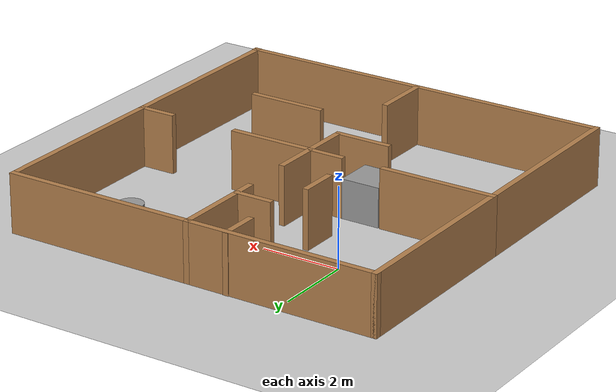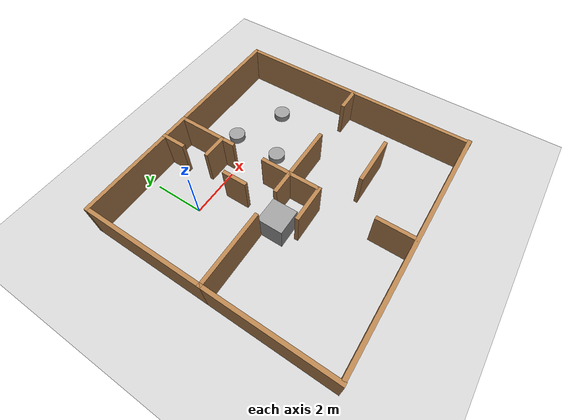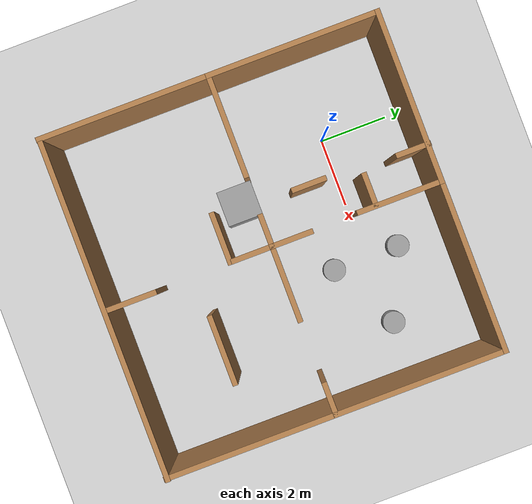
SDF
<sdf version="1.6">
 <world name="default">
  <model name="ground_plane">
   <static>1</static>
   <link name="link">
    <collision name="collision">
     <geometry><plane><normal>0 0 1</normal><size>100 100</size></plane></geometry>
     <surface><friction><ode><mu>100</mu><mu2>50</mu2></ode></friction></surface>
    </collision>
    <visual name="visual">
     <cast_shadows>0</cast_shadows>
     <geometry><plane><normal>0 0 1</normal><size>100 100</size></plane></geometry>
     <material>
      <script><uri>file://media/materials/scripts/gazebo.material</uri><name>Gazebo/Grey</name></script>
     </material>
    </visual>
   </link>
  </model>
  <model name="new_envi">
   <pose>2.36889 -2.44064 0 0 -0 0</pose>
   <link name="Wall_14">
    <collision name="Wall_14_Collision">
     <geometry><box><size>5 0.15 1.5</size></box></geometry>
     <pose>0 0 0.75 0 -0 0</pose>
    </collision>
    <visual name="Wall_14_Visual">
     <pose>0 0 0.75 0 -0 0</pose>
     <geometry><box><size>5 0.15 1.5</size></box></geometry>
     <material>
      <script><uri>file://media/materials/scripts/gazebo.material</uri><name>Gazebo/Wood</name></script>
      <ambient>1 1 1 1</ambient>
     </material>
     <meta><layer>0</layer></meta>
    </visual>
    <pose>-2.439 4.85 0 0 -0 0</pose>
   </link>
   <link name="Wall_16">
    <collision name="Wall_16_Collision">
     <geometry><box><size>5 0.15 1.5</size></box></geometry>
     <pose>0 0 0.75 0 -0 0</pose>
    </collision>
    <visual name="Wall_16_Visual">
     <pose>0 0 0.75 0 -0 0</pose>
     <geometry><box><size>5 0.15 1.5</size></box></geometry>
     <material>
      <script><uri>file://media/materials/scripts/gazebo.material</uri><name>Gazebo/Wood</name></script>
      <ambient>1 1 1 1</ambient>
     </material>
     <meta><layer>0</layer></meta>
    </visual>
    <pose>-4.864 2.425 0 0 -0 -1.5708</pose>
   </link>
   <link name="Wall_18">
    <collision name="Wall_18_Collision">
     <geometry><box><size>3 0.15 1.5</size></box></geometry>
     <pose>0 0 0.75 0 -0 0</pose>
    </collision>
    <visual name="Wall_18_Visual">
     <pose>0 0 0.75 0 -0 0</pose>
     <geometry><box><size>3 0.15 1.5</size></box></geometry>
     <material>
      <script><uri>file://media/materials/scripts/gazebo.material</uri><name>Gazebo/Wood</name></script>
      <ambient>1 1 1 1</ambient>
     </material>
     <meta><layer>0</layer></meta>
    </visual>
    <pose>-3.439 -0 0 0 -0 0</pose>
   </link>
   <link name="Wall_20">
    <collision name="Wall_20_Collision">
     <geometry><box><size>2.5 0.15 1.5</size></box></geometry>
     <pose>0 0 0.75 0 -0 0</pose>
    </collision>
    <visual name="Wall_20_Visual">
     <pose>0 0 0.75 0 -0 0</pose>
     <geometry><box><size>2.5 0.15 1.5</size></box></geometry>
     <material>
      <script><uri>file://media/materials/scripts/gazebo.material</uri><name>Gazebo/Wood</name></script>
      <ambient>1 1 1 1</ambient>
     </material>
     <meta><layer>0</layer></meta>
    </visual>
    <pose>-0.014 3.675 0 0 -0 -1.5708</pose>
   </link>
   <link name="Wall_22">
    <collision name="Wall_22_Collision">
     <geometry><box><size>1.25 0.15 1.5</size></box></geometry>
     <pose>0 0 0.75 0 -0 0</pose>
    </collision>
    <visual name="Wall_22_Visual">
     <pose>0 0 0.75 0 -0 0</pose>
     <geometry><box><size>1.25 0.15 1.5</size></box></geometry>
     <material>
      <script><uri>file://media/materials/scripts/gazebo.material</uri><name>Gazebo/Wood</name></script>
      <ambient>1 1 1 1</ambient>
     </material>
     <meta><layer>0</layer></meta>
    </visual>
    <pose>0.019 0.537 0 0 -0 -1.5708</pose>
   </link>
   <link name="Wall_23">
    <collision name="Wall_23_Collision">
     <geometry><box><size>1 0.15 1.5</size></box></geometry>
     <pose>0 0 0.75 0 -0 0</pose>
    </collision>
    <visual name="Wall_23_Visual">
     <pose>0 0 0.75 0 -0 0</pose>
     <geometry><box><size>1 0.15 1.5</size></box></geometry>
     <material>
      <script><uri>file://media/materials/scripts/gazebo.material</uri><name>Gazebo/Wood</name></script>
      <ambient>1 1 1 1</ambient>
     </material>
     <meta><layer>0</layer></meta>
    </visual>
    <pose>-0.406 -0.013 0 0 -0 3.14159</pose>
   </link>
   <link name="Wall_27">
    <collision name="Wall_27_Collision">
     <geometry><box><size>5 0.15 1.5</size></box></geometry>
     <pose>0 0 0.75 0 -0 0</pose>
    </collision>
    <visual name="Wall_27_Visual">
     <pose>0 0 0.75 0 -0 0</pose>
     <geometry><box><size>5 0.15 1.5</size></box></geometry>
     <material>
      <script><uri>file://media/materials/scripts/gazebo.material</uri><name>Gazebo/Wood</name></script>
      <ambient>1 1 1 1</ambient>
     </material>
     <meta><layer>0</layer></meta>
    </visual>
    <pose>2.411 4.85 0 0 -0 0</pose>
   </link>
   <link name="Wall_28">
    <collision name="Wall_28_Collision">
     <geometry><box><size>5 0.15 1.5</size></box></geometry>
     <pose>0 0 0.75 0 -0 0</pose>
    </collision>
    <visual name="Wall_28_Visual">
     <pose>0 0 0.75 0 -0 0</pose>
     <geometry><box><size>5 0.15 1.5</size></box></geometry>
     <material>
      <script><uri>file://media/materials/scripts/gazebo.material</uri><name>Gazebo/Wood</name></script>
      <ambient>1 1 1 1</ambient>
     </material>
     <meta><layer>0</layer></meta>
    </visual>
    <pose>4.836 2.425 0 0 -0 -1.5708</pose>
   </link>
   <link name="Wall_29">
    <collision name="Wall_29_Collision">
     <geometry><box><size>1 0.15 1.5</size></box></geometry>
     <pose>0 0 0.75 0 -0 0</pose>
    </collision>
    <visual name="Wall_29_Visual">
     <pose>0 0 0.75 0 -0 0</pose>
     <geometry><box><size>1 0.15 1.5</size></box></geometry>
     <material>
      <script><uri>file://media/materials/scripts/gazebo.material</uri><name>Gazebo/Wood</name></script>
      <ambient>1 1 1 1</ambient>
     </material>
     <meta><layer>0</layer></meta>
    </visual>
    <pose>4.411 -0 0 0 -0 3.14159</pose>
   </link>
   <link name="Wall_31">
    <collision name="Wall_31_Collision">
     <geometry><box><size>2.25 0.15 1.5</size></box></geometry>
     <pose>0 0 0.75 0 -0 0</pose>
    </collision>
    <visual name="Wall_31_Visual">
     <pose>0 0 0.75 0 -0 0</pose>
     <geometry><box><size>2.25 0.15 1.5</size></box></geometry>
     <material>
      <script><uri>file://media/materials/scripts/gazebo.material</uri><name>Gazebo/Wood</name></script>
      <ambient>1 1 1 1</ambient>
     </material>
     <meta><layer>0</layer></meta>
    </visual>
    <pose>1.069 -0.013 0 0 -0 0</pose>
   </link>
   <link name="Wall_35">
    <collision name="Wall_35_Collision">
     <geometry><box><size>9.75 0.15 1.5</size></box></geometry>
     <pose>0 0 0.75 0 -0 0</pose>
    </collision>
    <visual name="Wall_35_Visual">
     <pose>0 0 0.75 0 -0 0</pose>
     <geometry><box><size>9.75 0.15 1.5</size></box></geometry>
     <material>
      <script><uri>file://media/materials/scripts/gazebo.material</uri><name>Gazebo/Wood</name></script>
      <ambient>1 1 1 1</ambient>
     </material>
     <meta><layer>0</layer></meta>
    </visual>
    <pose>0.064 -4.835 0 0 -0 0</pose>
   </link>
   <link name="Wall_37">
    <collision name="Wall_37_Collision">
     <geometry><box><size>5 0.15 1.5</size></box></geometry>
     <pose>0 0 0.75 0 -0 0</pose>
    </collision>
    <visual name="Wall_37_Visual">
     <pose>0 0 0.75 0 -0 0</pose>
     <geometry><box><size>5 0.15 1.5</size></box></geometry>
     <material>
      <script><uri>file://media/materials/scripts/gazebo.material</uri><name>Gazebo/Wood</name></script>
      <ambient>1 1 1 1</ambient>
     </material>
     <meta><layer>0</layer></meta>
    </visual>
    <pose>4.836 -2.425 0 0 -0 -1.5708</pose>
   </link>
   <link name="Wall_39">
    <collision name="Wall_39_Collision">
     <geometry><box><size>5 0.15 1.5</size></box></geometry>
     <pose>0 0 0.75 0 -0 0</pose>
    </collision>
    <visual name="Wall_39_Visual">
     <pose>0 0 0.75 0 -0 0</pose>
     <geometry><box><size>5 0.15 1.5</size></box></geometry>
     <material>
      <script><uri>file://media/materials/scripts/gazebo.material</uri><name>Gazebo/Wood</name></script>
      <ambient>1 1 1 1</ambient>
     </material>
     <meta><layer>0</layer></meta>
    </visual>
    <pose>-4.864 -2.425 0 0 -0 -1.5708</pose>
   </link>
   <link name="Wall_41">
    <collision name="Wall_41_Collision">
     <geometry><box><size>1.25 0.15 1.5</size></box></geometry>
     <pose>0 0 0.75 0 -0 0</pose>
    </collision>
    <visual name="Wall_41_Visual">
     <pose>0 0 0.75 0 -0 0</pose>
     <geometry><box><size>1.25 0.15 1.5</size></box></geometry>
     <material>
      <script><uri>file://media/materials/scripts/gazebo.material</uri><name>Gazebo/Wood</name></script>
      <ambient>1 1 1 1</ambient>
     </material>
     <meta><layer>0</layer></meta>
    </visual>
    <pose>0.019 -0.563 0 0 -0 -1.5708</pose>
   </link>
   <link name="Wall_43">
    <collision name="Wall_43_Collision">
     <geometry><box><size>1.5 0.15 1.5</size></box></geometry>
     <pose>0 0 0.75 0 -0 0</pose>
    </collision>
    <visual name="Wall_43_Visual">
     <pose>0 0 0.75 0 -0 0</pose>
     <geometry><box><size>1.5 0.15 1.5</size></box></geometry>
     <material>
      <script><uri>file://media/materials/scripts/gazebo.material</uri><name>Gazebo/Wood</name></script>
      <ambient>1 1 1 1</ambient>
     </material>
     <meta><layer>0</layer></meta>
    </visual>
    <pose>0.064 -4.086 0 0 -0 -1.5708</pose>
   </link>
   <static>1</static>
  </model>
  <model name="V">
   <pose>1.90355 0.535293 0 0 -0 0</pose>
   <link name="Wall_48">
    <collision name="Wall_48_Collision">
     <geometry><box><size>1 0.15 1.5</size></box></geometry>
     <pose>0 0 0.75 0 -0 0</pose>
    </collision>
    <visual name="Wall_48_Visual">
     <pose>0 0 0.75 0 -0 0</pose>
     <geometry><box><size>1 0.15 1.5</size></box></geometry>
     <material>
      <script><uri>file://media/materials/scripts/gazebo.material</uri><name>Gazebo/Wood</name></script>
      <ambient>1 1 1 1</ambient>
     </material>
     <meta><layer>0</layer></meta>
    </visual>
   </link>
   <static>1</static>
  </model>
  <model name="HO_3">
   <pose>1.1783 -0.941978 0 0 -0 0</pose>
   <link name="Wall_54">
    <collision name="Wall_54_Collision">
     <geometry><box><size>1 0.15 1.5</size></box></geometry>
     <pose>0 0 0.75 0 -0 0</pose>
    </collision>
    <visual name="Wall_54_Visual">
     <pose>0 0 0.75 0 -0 0</pose>
     <geometry><box><size>1 0.15 1.5</size></box></geometry>
     <material>
      <script><uri>file://media/materials/scripts/gazebo.material</uri><name>Gazebo/Wood</name></script>
      <ambient>1 1 1 1</ambient>
     </material>
     <meta><layer>0</layer></meta>
    </visual>
    <pose>0 0 0 0 -0 -1.5708</pose>
   </link>
   <static>1</static>
  </model>
  <model name="HO_4">
   <pose>1.29577 1.99997 0 0 -0 0</pose>
   <link name="Wall_54">
    <collision name="Wall_54_Collision">
     <geometry><box><size>1 0.15 1.5</size></box></geometry>
     <pose>0 0 0.75 0 -0 0</pose>
    </collision>
    <visual name="Wall_54_Visual">
     <pose>0 0 0.75 0 -0 0</pose>
     <geometry><box><size>1 0.15 1.5</size></box></geometry>
     <material>
      <script><uri>file://media/materials/scripts/gazebo.material</uri><name>Gazebo/Wood</name></script>
      <ambient>1 1 1 1</ambient>
     </material>
     <meta><layer>0</layer></meta>
    </visual>
    <pose>0 0 0 0 -0 -1.5708</pose>
   </link>
   <static>1</static>
  </model>
  <model name="c0">
   <link name="link">
    <inertial>
     <mass>1</mass>
     <inertia><ixx>0.145833</ixx><ixy>0</ixy><ixz>0</ixz><iyy>0.145833</iyy><iyz>0</iyz><izz>0.125</izz></inertia>
    </inertial>
    <visual name="visual">
     <geometry><cylinder><radius>0.326555</radius><length>0.51474</length></cylinder></geometry>
     <material>
      <script><name>Gazebo/Grey</name><uri>file://media/materials/scripts/gazebo.material</uri></script>
     </material>
    </visual>
    <collision name="collision">
     <geometry><cylinder><radius>0.326555</radius><length>0.51474</length></cylinder></geometry>
     <surface>
      <friction>
       <ode><mu>1</mu><mu2>1</mu2><fdir1>0 0 0</fdir1><slip1>0</slip1><slip2>0</slip2></ode>
       <torsional>
        <coefficient>1</coefficient>
        <patch_radius>0</patch_radius>
        <surface_radius>0</surface_radius>
        <use_patch_radius>1</use_patch_radius>
        <ode><slip>0</slip></ode>
       </torsional>
      </friction>
      <bounce><restitution_coefficient>0</restitution_coefficient><threshold>1e+06</threshold></bounce>
      <contact>
       <collide_without_contact>0</collide_without_contact>
       <collide_without_contact_bitmask>1</collide_without_contact_bitmask>
       <collide_bitmask>1</collide_bitmask>
       <ode>
        <soft_cfm>0</soft_cfm>
        <soft_erp>0.2</soft_erp>
        <kp>1e+13</kp>
        <kd>1</kd>
        <max_vel>0.01</max_vel>
        <min_depth>0</min_depth>
       </ode>
       <bullet>
        <split_impulse>1</split_impulse>
        <split_impulse_penetration_threshold>-0.01</split_impulse_penetration_threshold>
        <soft_cfm>0</soft_cfm>
        <soft_erp>0.2</soft_erp>
        <kp>1e+13</kp>
        <kd>1</kd>
       </bullet>
      </contact>
     </surface>
    </collision>
   </link>
   <static>1</static>
   <pose>5.70012 0.083019 0 0 -0 0</pose>
  </model>
  <model name="c0_0">
   <link name="link">
    <inertial>
     <mass>1</mass>
     <inertia><ixx>0.145833</ixx><ixy>0</ixy><ixz>0</ixz><iyy>0.145833</iyy><iyz>0</iyz><izz>0.125</izz></inertia>
    </inertial>
    <visual name="visual">
     <geometry><cylinder><radius>0.326555</radius><length>0.51474</length></cylinder></geometry>
     <material>
      <script><name>Gazebo/Grey</name><uri>file://media/materials/scripts/gazebo.material</uri></script>
     </material>
    </visual>
    <collision name="collision">
     <geometry><cylinder><radius>0.326555</radius><length>0.51474</length></cylinder></geometry>
     <surface>
      <friction>
       <ode><mu>1</mu><mu2>1</mu2><fdir1>0 0 0</fdir1><slip1>0</slip1><slip2>0</slip2></ode>
       <torsional>
        <coefficient>1</coefficient>
        <patch_radius>0</patch_radius>
        <surface_radius>0</surface_radius>
        <use_patch_radius>1</use_patch_radius>
        <ode><slip>0</slip></ode>
       </torsional>
      </friction>
      <bounce><restitution_coefficient>0</restitution_coefficient><threshold>1e+06</threshold></bounce>
      <contact>
       <collide_without_contact>0</collide_without_contact>
       <collide_without_contact_bitmask>1</collide_without_contact_bitmask>
       <collide_bitmask>1</collide_bitmask>
       <ode>
        <soft_cfm>0</soft_cfm>
        <soft_erp>0.2</soft_erp>
        <kp>1e+13</kp>
        <kd>1</kd>
        <max_vel>0.01</max_vel>
        <min_depth>0</min_depth>
       </ode>
       <bullet>
        <split_impulse>1</split_impulse>
        <split_impulse_penetration_threshold>-0.01</split_impulse_penetration_threshold>
        <soft_cfm>0</soft_cfm>
        <soft_erp>0.2</soft_erp>
        <kp>1e+13</kp>
        <kd>1</kd>
       </bullet>
      </contact>
     </surface>
    </collision>
   </link>
   <static>1</static>
   <pose>3.67678 -0.998554 0 0 -0 0</pose>
  </model>
  <model name="c0_2">
   <link name="link">
    <inertial>
     <mass>1</mass>
     <inertia><ixx>0.145833</ixx><ixy>0</ixy><ixz>0</ixz><iyy>0.145833</iyy><iyz>0</iyz><izz>0.125</izz></inertia>
    </inertial>
    <visual name="visual">
     <geometry><cylinder><radius>0.326555</radius><length>0.51474</length></cylinder></geometry>
     <material>
      <script><name>Gazebo/Grey</name><uri>file://media/materials/scripts/gazebo.material</uri></script>
     </material>
    </visual>
    <collision name="collision">
     <geometry><cylinder><radius>0.326555</radius><length>0.51474</length></cylinder></geometry>
     <surface>
      <friction>
       <ode><mu>1</mu><mu2>1</mu2><fdir1>0 0 0</fdir1><slip1>0</slip1><slip2>0</slip2></ode>
       <torsional>
        <coefficient>1</coefficient>
        <patch_radius>0</patch_radius>
        <surface_radius>0</surface_radius>
        <use_patch_radius>1</use_patch_radius>
        <ode><slip>0</slip></ode>
       </torsional>
      </friction>
      <bounce><restitution_coefficient>0</restitution_coefficient><threshold>1e+06</threshold></bounce>
      <contact>
       <collide_without_contact>0</collide_without_contact>
       <collide_without_contact_bitmask>1</collide_without_contact_bitmask>
       <collide_bitmask>1</collide_bitmask>
       <ode>
        <soft_cfm>0</soft_cfm>
        <soft_erp>0.2</soft_erp>
        <kp>1e+13</kp>
        <kd>1</kd>
        <max_vel>0.01</max_vel>
        <min_depth>0</min_depth>
       </ode>
       <bullet>
        <split_impulse>1</split_impulse>
        <split_impulse_penetration_threshold>-0.01</split_impulse_penetration_threshold>
        <soft_cfm>0</soft_cfm>
        <soft_erp>0.2</soft_erp>
        <kp>1e+13</kp>
        <kd>1</kd>
       </bullet>
      </contact>
     </surface>
    </collision>
   </link>
   <static>1</static>
   <pose>3.66158 0.979241 0 0 -0 0</pose>
  </model>
  <model name="woll_ho">
   <pose>1.71026 -3.65564 0 0 -0 0</pose>
   <link name="Wall_47">
    <collision name="Wall_47_Collision">
     <geometry><box><size>1.5 0.15 1.5</size></box></geometry>
     <pose>0 0 0.75 0 -0 0</pose>
    </collision>
    <visual name="Wall_47_Visual">
     <pose>0 0 0.75 0 -0 0</pose>
     <geometry><box><size>1.5 0.15 1.5</size></box></geometry>
     <material>
      <script><uri>file://media/materials/scripts/gazebo.material</uri><name>Gazebo/Wood</name></script>
      <ambient>1 1 1 1</ambient>
     </material>
     <meta><layer>0</layer></meta>
    </visual>
    <pose>0 0 0 0 -0 3.14159</pose>
   </link>
   <static>1</static>
  </model>
  <model name="wall_v_0">
   <pose>4.52756 -4.67997 0 0 -0 0</pose>
   <link name="Wall_43">
    <collision name="Wall_43_Collision">
     <geometry><box><size>2 0.15 1.5</size></box></geometry>
     <pose>0 0 0.75 0 -0 0</pose>
    </collision>
    <visual name="Wall_43_Visual">
     <pose>0 0 0.75 0 -0 0</pose>
     <geometry><box><size>2 0.15 1.5</size></box></geometry>
     <material>
      <script><uri>file://media/materials/scripts/gazebo.material</uri><name>Gazebo/Wood</name></script>
      <ambient>1 1 1 1</ambient>
     </material>
     <meta><layer>0</layer></meta>
    </visual>
   </link>
   <static>1</static>
  </model>
  <model name="unit_box">
   <pose>0.959842 -2.87843 0.5 0 -0 0</pose>
   <link name="link">
    <inertial>
     <mass>1</mass>
     <inertia>
      <ixx>0.166667</ixx>
      <ixy>0</ixy>
      <ixz>0</ixz>
      <iyy>0.166667</iyy>
      <iyz>0</iyz>
      <izz>0.166667</izz>
     </inertia>
    </inertial>
    <collision name="collision"><geometry><box><size>1 1 1</size></box></geometry></collision>
    <visual name="visual">
     <geometry><box><size>1 1 1</size></box></geometry>
     <material>
      <script><name>Gazebo/Grey</name><uri>file://media/materials/scripts/gazebo.material</uri></script>
     </material>
    </visual>
   </link>
  </model>
 </world>
</sdf>
